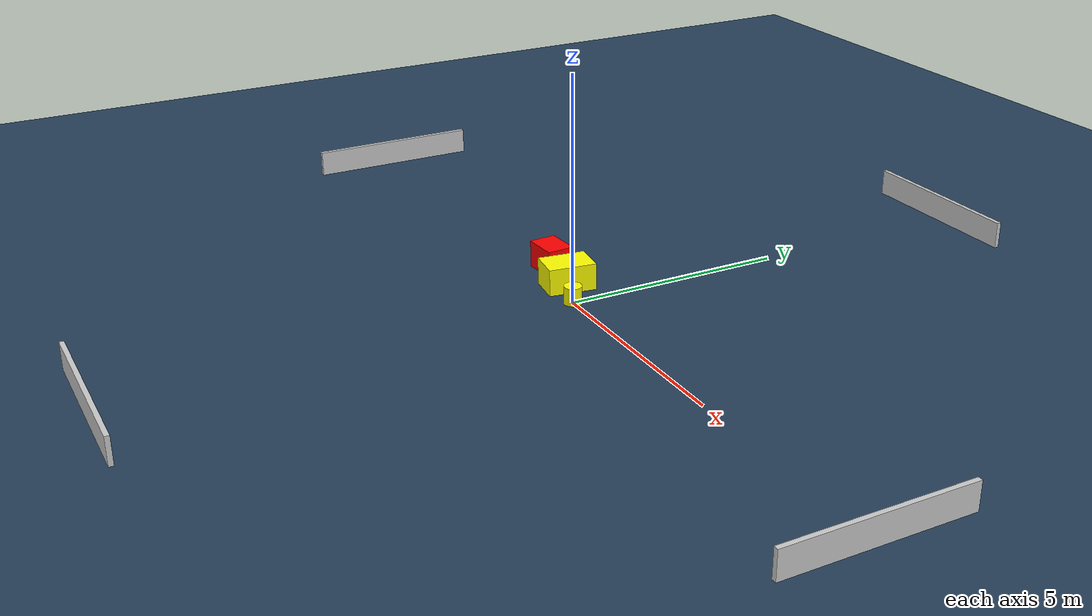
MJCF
<?xml version="1.0" ?>
<mujoco model="generated_environment">
  <option timestep="0.01" integrator="RK4" cone="elliptic"/>
  <default>
    <geom density="1"/>
  </default>
  <asset>
    <texture builtin="gradient" height="3072" name="skybox" rgb1="0.3 0.5 0.7" rgb2="0 0 0" type="skybox" width="512"/>
    <texture builtin="checker" height="300" name="groundplane" rgb1="0.2 0.3 0.4" rgb2="0.1 0.2 0.3" type="2d" width="300"/>
    <material name="groundplane" reflectance="0.2" texrepeat="5 5" texture="groundplane"/>
  </asset>
  <worldbody>
    <light dir="0 0 -1" directional="true" pos="0 0 1.5"/>
    <geom condim="3" friction="0.5 0.005 0.001" material="groundplane" name="floor" pos="0 0 0" size="0 0 0.05" type="plane"/>
    <body name="walls">
      <geom name="wall_1" condim="4" pos="-10.0 0.0 0.3" rgba="0.800000011920929 0.800000011920929 0.800000011920929 1.0" size="0.05 2.0 0.3" type="box"/>
      <geom name="wall_2" condim="4" pos="10.0 0.0 0.3" rgba="0.800000011920929 0.800000011920929 0.800000011920929 1.0" size="0.05 2.0 0.3" type="box"/>
      <geom name="wall_3" condim="4" pos="0.0 -10.0 0.3" rgba="0.800000011920929 0.800000011920929 0.800000011920929 1.0" size="2.0 0.05 0.3" type="box"/>
      <geom name="wall_4" condim="4" pos="0.0 10.0 0.3" rgba="0.800000011920929 0.800000011920929 0.800000011920929 1.0" size="2.0 0.05 0.3" type="box"/>
    </body>
    <body name="robot">
      <joint name="joint_x" type="slide" pos="0 0 0" axis="1 0 0"/>
      <joint name="joint_y" type="slide" pos="0 0 0" axis="0 1 0"/>
      <geom name="robot" type="cylinder" pos="0.0 0.0 0.2" size="0.2 0.2 0.0" mass="5.0" friction="1.0 0.005 0.0001" condim="4" rgba="1.0 1.0 0.0 1.0"/>
    </body>
    <body name="obstacle_1_movable">
      <geom name="obstacle_1_movable" condim="4" pos="-0.8034637527990298 0.2912745674539057 0.3" euler="0 0 82.3257869965335" friction="0.0 0.005 0.001" rgba="1.0 1.0 0.0 1.0" size="0.5329998473963062 0.3699527262045804 0.3" type="box" mass="0.1"/>
      <joint type="free"/>
    </body>
    <body name="obstacle_2_static">
      <geom name="obstacle_2_static" condim="4" pos="-1.789580975577372 0.42986434767018294 0.3" euler="0 0 4.003478384272041" friction="0.0 0.005 0.001" rgba="1.0 0.0 0.0 1.0" size="0.39472780382105976 0.30523449378856343 0.3" type="box"/>
    </body>
  </worldbody>
  <actuator>
    <motor name="actuator_x" joint="joint_x" gear="1" ctrlrange="-1 1"/>
    <motor name="actuator_y" joint="joint_y" gear="1" ctrlrange="-1 1"/>
  </actuator>
</mujoco>
